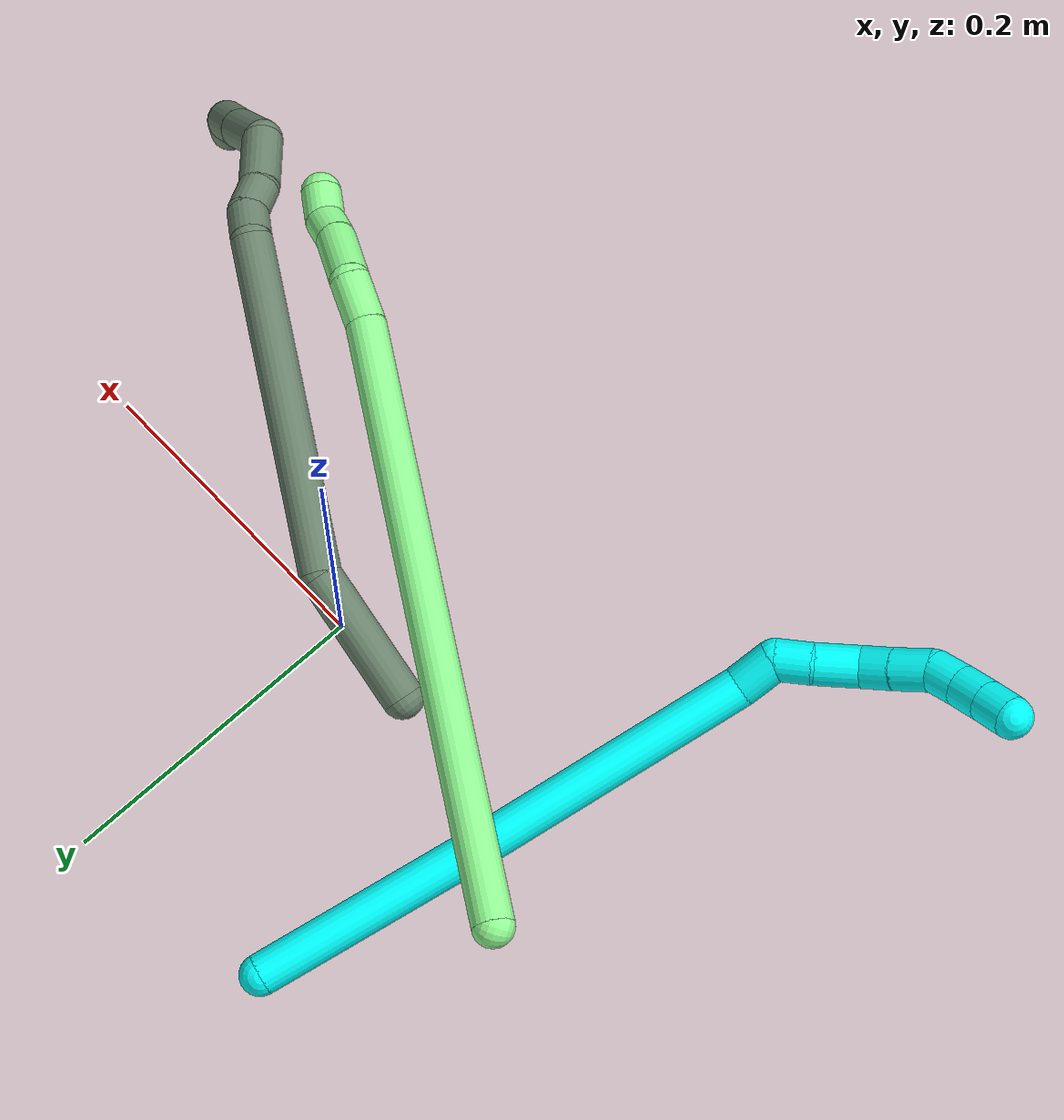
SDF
<sdf version="1.7">
 <world name="default">
  <model name="3">
   <static>0</static>
   <link name="3">
    <collision name="collision-cylinder-e_1_1_4">
     <pose>-0.018605 -0.067465 0.001817 1.54387 -0.268997 -0.261932</pose>
     <geometry><cylinder><radius>0.0125</radius><length>0.140014</length></cylinder></geometry>
     <surface>
      <friction><ode><mu>1.16</mu><mu2>1.16</mu2><slip1>0</slip1><slip2>0</slip2></ode></friction>
      <contact><ode><kp>1e+06</kp><kd>1</kd><max_vel>0</max_vel><min_depth>0.001</min_depth></ode></contact>
     </surface>
    </collision>
    <visual name="visual-cylinder-e_1_1_4">
     <pose>-0.018605 -0.067465 0.001817 1.54387 -0.268997 -0.261932</pose>
     <geometry><cylinder><radius>0.0125</radius><length>0.140014</length></cylinder></geometry>
     <material><ambient>0.003922 1 0.996078 1</ambient></material>
    </visual>
    <collision name="collision-cylinder-e_2_4_5">
     <pose>-0.059263 -0.222153 0.004948 1.55573 -0.247607 -0.243942</pose>
     <geometry><cylinder><radius>0.0125</radius><length>0.179953</length></cylinder></geometry>
     <surface>
      <friction><ode><mu>1.16</mu><mu2>1.16</mu2><slip1>0</slip1><slip2>0</slip2></ode></friction>
      <contact><ode><kp>1e+06</kp><kd>1</kd><max_vel>0</max_vel><min_depth>0.001</min_depth></ode></contact>
     </surface>
    </collision>
    <visual name="visual-cylinder-e_2_4_5">
     <pose>-0.059263 -0.222153 0.004948 1.55573 -0.247607 -0.243942</pose>
     <geometry><cylinder><radius>0.0125</radius><length>0.179953</length></cylinder></geometry>
     <material><ambient>0.003922 1 0.996078 1</ambient></material>
    </visual>
    <collision name="collision-cylinder-e_3_5_6">
     <pose>-0.082548 -0.321729 0.010341 1.25191 -0.094548 -0.068376</pose>
     <geometry><cylinder><radius>0.0125</radius><length>0.026136</length></cylinder></geometry>
     <surface>
      <friction><ode><mu>1.16</mu><mu2>1.16</mu2><slip1>0</slip1><slip2>0</slip2></ode></friction>
      <contact><ode><kp>1e+06</kp><kd>1</kd><max_vel>0</max_vel><min_depth>0.001</min_depth></ode></contact>
     </surface>
    </collision>
    <visual name="visual-cylinder-e_3_5_6">
     <pose>-0.082548 -0.321729 0.010341 1.25191 -0.094548 -0.068376</pose>
     <geometry><cylinder><radius>0.0125</radius><length>0.026136</length></cylinder></geometry>
     <material><ambient>0.003922 1 0.996078 1</ambient></material>
    </visual>
    <collision name="collision-cylinder-e_4_6_7">
     <pose>-0.091994 -0.340596 0.017351 1.14778 -0.854978 -0.572847</pose>
     <geometry><cylinder><radius>0.0125</radius><length>0.021767</length></cylinder></geometry>
     <surface>
      <friction><ode><mu>1.16</mu><mu2>1.16</mu2><slip1>0</slip1><slip2>0</slip2></ode></friction>
      <contact><ode><kp>1e+06</kp><kd>1</kd><max_vel>0</max_vel><min_depth>0.001</min_depth></ode></contact>
     </surface>
    </collision>
    <visual name="visual-cylinder-e_4_6_7">
     <pose>-0.091994 -0.340596 0.017351 1.14778 -0.854978 -0.572847</pose>
     <geometry><cylinder><radius>0.0125</radius><length>0.021767</length></cylinder></geometry>
     <material><ambient>0.003922 1 0.996078 1</ambient></material>
    </visual>
    <collision name="collision-cylinder-e_5_7_8">
     <pose>-0.110755 -0.356289 0.02201 1.38489 -0.845985 -0.714724</pose>
     <geometry><cylinder><radius>0.0125</radius><length>0.028181</length></cylinder></geometry>
     <surface>
      <friction><ode><mu>1.16</mu><mu2>1.16</mu2><slip1>0</slip1><slip2>0</slip2></ode></friction>
      <contact><ode><kp>1e+06</kp><kd>1</kd><max_vel>0</max_vel><min_depth>0.001</min_depth></ode></contact>
     </surface>
    </collision>
    <visual name="visual-cylinder-e_5_7_8">
     <pose>-0.110755 -0.356289 0.02201 1.38489 -0.845985 -0.714724</pose>
     <geometry><cylinder><radius>0.0125</radius><length>0.028181</length></cylinder></geometry>
     <material><ambient>0.003922 1 0.996078 1</ambient></material>
    </visual>
    <collision name="collision-cylinder-e_6_8_9">
     <pose>-0.127481 -0.37099 0.029404 0.772208 -0.662999 -0.278036</pose>
     <geometry><cylinder><radius>0.0125</radius><length>0.020075</length></cylinder></geometry>
     <surface>
      <friction><ode><mu>1.16</mu><mu2>1.16</mu2><slip1>0</slip1><slip2>0</slip2></ode></friction>
      <contact><ode><kp>1e+06</kp><kd>1</kd><max_vel>0</max_vel><min_depth>0.001</min_depth></ode></contact>
     </surface>
    </collision>
    <visual name="visual-cylinder-e_6_8_9">
     <pose>-0.127481 -0.37099 0.029404 0.772208 -0.662999 -0.278036</pose>
     <geometry><cylinder><radius>0.0125</radius><length>0.020075</length></cylinder></geometry>
     <material><ambient>0.003922 1 0.996078 1</ambient></material>
    </visual>
    <collision name="collision-cylinder-e_7_9_10">
     <pose>-0.140933 -0.383498 0.041411 0.834024 -0.656698 -0.299578</pose>
     <geometry><cylinder><radius>0.0125</radius><length>0.023828</length></cylinder></geometry>
     <surface>
      <friction><ode><mu>1.16</mu><mu2>1.16</mu2><slip1>0</slip1><slip2>0</slip2></ode></friction>
      <contact><ode><kp>1e+06</kp><kd>1</kd><max_vel>0</max_vel><min_depth>0.001</min_depth></ode></contact>
     </surface>
    </collision>
    <visual name="visual-cylinder-e_7_9_10">
     <pose>-0.140933 -0.383498 0.041411 0.834024 -0.656698 -0.299578</pose>
     <geometry><cylinder><radius>0.0125</radius><length>0.023828</length></cylinder></geometry>
     <material><ambient>0.003922 1 0.996078 1</ambient></material>
    </visual>
    <collision name="collision-cylinder-e_8_10_11">
     <pose>-0.155505 -0.39201 0.054443 0.223804 -0.816131 -0.097088</pose>
     <geometry><cylinder><radius>0.0125</radius><length>0.020037</length></cylinder></geometry>
     <surface>
      <friction><ode><mu>1.16</mu><mu2>1.16</mu2><slip1>0</slip1><slip2>0</slip2></ode></friction>
      <contact><ode><kp>1e+06</kp><kd>1</kd><max_vel>0</max_vel><min_depth>0.001</min_depth></ode></contact>
     </surface>
    </collision>
    <visual name="visual-cylinder-e_8_10_11">
     <pose>-0.155505 -0.39201 0.054443 0.223804 -0.816131 -0.097088</pose>
     <geometry><cylinder><radius>0.0125</radius><length>0.020037</length></cylinder></geometry>
     <material><ambient>0.003922 1 0.996078 1</ambient></material>
    </visual>
    <collision name="collision-cylinder-e_9_11_12">
     <pose>-0.169366 -0.394485 0.068624 0.12644 -0.715613 -0.04733</pose>
     <geometry><cylinder><radius>0.0125</radius><length>0.020006</length></cylinder></geometry>
     <surface>
      <friction><ode><mu>1.16</mu><mu2>1.16</mu2><slip1>0</slip1><slip2>0</slip2></ode></friction>
      <contact><ode><kp>1e+06</kp><kd>1</kd><max_vel>0</max_vel><min_depth>0.001</min_depth></ode></contact>
     </surface>
    </collision>
    <visual name="visual-cylinder-e_9_11_12">
     <pose>-0.169366 -0.394485 0.068624 0.12644 -0.715613 -0.04733</pose>
     <geometry><cylinder><radius>0.0125</radius><length>0.020006</length></cylinder></geometry>
     <material><ambient>0.003922 1 0.996078 1</ambient></material>
    </visual>
    <collision name="collision-cylinder-e_10_12_2">
     <pose>-0.182437 -0.396197 0.083669 0.100186 -0.708582 -0.037086</pose>
     <geometry><cylinder><radius>0.0125</radius><length>0.020003</length></cylinder></geometry>
     <surface>
      <friction><ode><mu>1.16</mu><mu2>1.16</mu2><slip1>0</slip1><slip2>0</slip2></ode></friction>
      <contact><ode><kp>1e+06</kp><kd>1</kd><max_vel>0</max_vel><min_depth>0.001</min_depth></ode></contact>
     </surface>
    </collision>
    <visual name="visual-cylinder-e_10_12_2">
     <pose>-0.182437 -0.396197 0.083669 0.100186 -0.708582 -0.037086</pose>
     <geometry><cylinder><radius>0.0125</radius><length>0.020003</length></cylinder></geometry>
     <material><ambient>0.003922 1 0.996078 1</ambient></material>
    </visual>
    <collision name="collision-sphere-2">
     <pose>-0.188945 -0.396956 0.091225 0 -0 0</pose>
     <geometry><sphere><radius>0.0125</radius></sphere></geometry>
     <surface>
      <friction><ode><mu>1.16</mu><mu2>1.16</mu2><slip1>0</slip1><slip2>0</slip2></ode></friction>
      <contact><ode><kp>1e+06</kp><kd>1</kd><max_vel>0</max_vel><min_depth>0.001</min_depth></ode></contact>
     </surface>
    </collision>
    <visual name="visual-sphere-2">
     <pose>-0.188945 -0.396956 0.091225 0 -0 0</pose>
     <geometry><sphere><radius>0.0125</radius></sphere></geometry>
     <material><ambient>0.003922 1 0.996078 1</ambient></material>
    </visual>
    <collision name="collision-sphere-12">
     <pose>-0.175928 -0.395437 0.076113 0 -0 0</pose>
     <geometry><sphere><radius>0.0125</radius></sphere></geometry>
     <surface>
      <friction><ode><mu>1.16</mu><mu2>1.16</mu2><slip1>0</slip1><slip2>0</slip2></ode></friction>
      <contact><ode><kp>1e+06</kp><kd>1</kd><max_vel>0</max_vel><min_depth>0.001</min_depth></ode></contact>
     </surface>
    </collision>
    <visual name="visual-sphere-12">
     <pose>-0.175928 -0.395437 0.076113 0 -0 0</pose>
     <geometry><sphere><radius>0.0125</radius></sphere></geometry>
     <material><ambient>0.003922 1 0.996078 1</ambient></material>
    </visual>
    <collision name="collision-sphere-11">
     <pose>-0.162803 -0.393533 0.061135 0 -0 0</pose>
     <geometry><sphere><radius>0.0125</radius></sphere></geometry>
     <surface>
      <friction><ode><mu>1.16</mu><mu2>1.16</mu2><slip1>0</slip1><slip2>0</slip2></ode></friction>
      <contact><ode><kp>1e+06</kp><kd>1</kd><max_vel>0</max_vel><min_depth>0.001</min_depth></ode></contact>
     </surface>
    </collision>
    <visual name="visual-sphere-11">
     <pose>-0.162803 -0.393533 0.061135 0 -0 0</pose>
     <geometry><sphere><radius>0.0125</radius></sphere></geometry>
     <material><ambient>0.003922 1 0.996078 1</ambient></material>
    </visual>
    <collision name="collision-sphere-10">
     <pose>-0.148206 -0.390487 0.047751 0 -0 0</pose>
     <geometry><sphere><radius>0.0125</radius></sphere></geometry>
     <surface>
      <friction><ode><mu>1.16</mu><mu2>1.16</mu2><slip1>0</slip1><slip2>0</slip2></ode></friction>
      <contact><ode><kp>1e+06</kp><kd>1</kd><max_vel>0</max_vel><min_depth>0.001</min_depth></ode></contact>
     </surface>
    </collision>
    <visual name="visual-sphere-10">
     <pose>-0.148206 -0.390487 0.047751 0 -0 0</pose>
     <geometry><sphere><radius>0.0125</radius></sphere></geometry>
     <material><ambient>0.003922 1 0.996078 1</ambient></material>
    </visual>
    <collision name="collision-sphere-9">
     <pose>-0.133659 -0.376509 0.035071 0 -0 0</pose>
     <geometry><sphere><radius>0.0125</radius></sphere></geometry>
     <surface>
      <friction><ode><mu>1.16</mu><mu2>1.16</mu2><slip1>0</slip1><slip2>0</slip2></ode></friction>
      <contact><ode><kp>1e+06</kp><kd>1</kd><max_vel>0</max_vel><min_depth>0.001</min_depth></ode></contact>
     </surface>
    </collision>
    <visual name="visual-sphere-9">
     <pose>-0.133659 -0.376509 0.035071 0 -0 0</pose>
     <geometry><sphere><radius>0.0125</radius></sphere></geometry>
     <material><ambient>0.003922 1 0.996078 1</ambient></material>
    </visual>
    <collision name="collision-sphere-4">
     <pose>-0.037211 -0.13493 0.003634 0 -0 0</pose>
     <geometry><sphere><radius>0.0125</radius></sphere></geometry>
     <surface>
      <friction><ode><mu>1.16</mu><mu2>1.16</mu2><slip1>0</slip1><slip2>0</slip2></ode></friction>
      <contact><ode><kp>1e+06</kp><kd>1</kd><max_vel>0</max_vel><min_depth>0.001</min_depth></ode></contact>
     </surface>
    </collision>
    <visual name="visual-sphere-4">
     <pose>-0.037211 -0.13493 0.003634 0 -0 0</pose>
     <geometry><sphere><radius>0.0125</radius></sphere></geometry>
     <material><ambient>0.003922 1 0.996078 1</ambient></material>
    </visual>
    <collision name="collision-sphere-1">
     <geometry><sphere><radius>0.0125</radius></sphere></geometry>
     <surface>
      <friction><ode><mu>1.16</mu><mu2>1.16</mu2><slip1>0</slip1><slip2>0</slip2></ode></friction>
      <contact><ode><kp>1e+06</kp><kd>1</kd><max_vel>0</max_vel><min_depth>0.001</min_depth></ode></contact>
     </surface>
    </collision>
    <visual name="visual-sphere-1">
     <geometry><sphere><radius>0.0125</radius></sphere></geometry>
     <material><ambient>0.003922 1 0.996078 1</ambient></material>
    </visual>
    <collision name="collision-sphere-8">
     <pose>-0.121303 -0.36547 0.023737 0 -0 0</pose>
     <geometry><sphere><radius>0.0125</radius></sphere></geometry>
     <surface>
      <friction><ode><mu>1.16</mu><mu2>1.16</mu2><slip1>0</slip1><slip2>0</slip2></ode></friction>
      <contact><ode><kp>1e+06</kp><kd>1</kd><max_vel>0</max_vel><min_depth>0.001</min_depth></ode></contact>
     </surface>
    </collision>
    <visual name="visual-sphere-8">
     <pose>-0.121303 -0.36547 0.023737 0 -0 0</pose>
     <geometry><sphere><radius>0.0125</radius></sphere></geometry>
     <material><ambient>0.003922 1 0.996078 1</ambient></material>
    </visual>
    <collision name="collision-sphere-5">
     <pose>-0.081315 -0.309375 0.006262 0 -0 0</pose>
     <geometry><sphere><radius>0.0125</radius></sphere></geometry>
     <surface>
      <friction><ode><mu>1.16</mu><mu2>1.16</mu2><slip1>0</slip1><slip2>0</slip2></ode></friction>
      <contact><ode><kp>1e+06</kp><kd>1</kd><max_vel>0</max_vel><min_depth>0.001</min_depth></ode></contact>
     </surface>
    </collision>
    <visual name="visual-sphere-5">
     <pose>-0.081315 -0.309375 0.006262 0 -0 0</pose>
     <geometry><sphere><radius>0.0125</radius></sphere></geometry>
     <material><ambient>0.003922 1 0.996078 1</ambient></material>
    </visual>
    <collision name="collision-sphere-6">
     <pose>-0.083782 -0.334083 0.01442 0 -0 0</pose>
     <geometry><sphere><radius>0.0125</radius></sphere></geometry>
     <surface>
      <friction><ode><mu>1.16</mu><mu2>1.16</mu2><slip1>0</slip1><slip2>0</slip2></ode></friction>
      <contact><ode><kp>1e+06</kp><kd>1</kd><max_vel>0</max_vel><min_depth>0.001</min_depth></ode></contact>
     </surface>
    </collision>
    <visual name="visual-sphere-6">
     <pose>-0.083782 -0.334083 0.01442 0 -0 0</pose>
     <geometry><sphere><radius>0.0125</radius></sphere></geometry>
     <material><ambient>0.003922 1 0.996078 1</ambient></material>
    </visual>
    <collision name="collision-sphere-7">
     <pose>-0.100206 -0.347108 0.020283 0 -0 0</pose>
     <geometry><sphere><radius>0.0125</radius></sphere></geometry>
     <surface>
      <friction><ode><mu>1.16</mu><mu2>1.16</mu2><slip1>0</slip1><slip2>0</slip2></ode></friction>
      <contact><ode><kp>1e+06</kp><kd>1</kd><max_vel>0</max_vel><min_depth>0.001</min_depth></ode></contact>
     </surface>
    </collision>
    <visual name="visual-sphere-7">
     <pose>-0.100206 -0.347108 0.020283 0 -0 0</pose>
     <geometry><sphere><radius>0.0125</radius></sphere></geometry>
     <material><ambient>0.003922 1 0.996078 1</ambient></material>
    </visual>
    <inertial>
     <pose>-0.073243 -0.231087 0.016255 0 -0 0</pose>
     <mass>0.5</mass>
     <inertia>
      <ixx>0.000501</ixx>
      <ixy>0</ixy>
      <ixz>0</ixz>
      <iyy>-0.000138</iyy>
      <iyz>0</iyz>
      <izz>0.00091</izz>
     </inertia>
    </inertial>
   </link>
   <pose>-0.132756 0.178209 0.011812 -0.239427 -0.360176 0.111342</pose>
  </model>
  <model name="13">
   <static>0</static>
   <link name="13">
    <collision name="collision-cylinder-e_1_1_4">
     <pose>0.152491 -0.082311 0.08204 0.787048 0.919592 0.40554</pose>
     <geometry><cylinder><radius>0.0125</radius><length>0.383454</length></cylinder></geometry>
     <surface>
      <friction><ode><mu>1.16</mu><mu2>1.16</mu2><slip1>0</slip1><slip2>0</slip2></ode></friction>
      <contact><ode><kp>1e+06</kp><kd>1</kd><max_vel>0</max_vel><min_depth>0.001</min_depth></ode></contact>
     </surface>
    </collision>
    <visual name="visual-cylinder-e_1_1_4">
     <pose>0.152491 -0.082311 0.08204 0.787048 0.919592 0.40554</pose>
     <geometry><cylinder><radius>0.0125</radius><length>0.383454</length></cylinder></geometry>
     <material><ambient>0.564706 0.984314 0.572549 1</ambient></material>
    </visual>
    <collision name="collision-cylinder-e_2_4_5">
     <pose>0.316075 -0.171315 0.172767 0.656441 0.79117 0.282522</pose>
     <geometry><cylinder><radius>0.0125</radius><length>0.031198</length></cylinder></geometry>
     <surface>
      <friction><ode><mu>1.16</mu><mu2>1.16</mu2><slip1>0</slip1><slip2>0</slip2></ode></friction>
      <contact><ode><kp>1e+06</kp><kd>1</kd><max_vel>0</max_vel><min_depth>0.001</min_depth></ode></contact>
     </surface>
    </collision>
    <visual name="visual-cylinder-e_2_4_5">
     <pose>0.316075 -0.171315 0.172767 0.656441 0.79117 0.282522</pose>
     <geometry><cylinder><radius>0.0125</radius><length>0.031198</length></cylinder></geometry>
     <material><ambient>0.564706 0.984314 0.572549 1</ambient></material>
    </visual>
    <collision name="collision-cylinder-e_3_5_6">
     <pose>0.347366 -0.179011 0.188634 0.138776 1.2262 0.097714</pose>
     <geometry><cylinder><radius>0.0125</radius><length>0.042918</length></cylinder></geometry>
     <surface>
      <friction><ode><mu>1.16</mu><mu2>1.16</mu2><slip1>0</slip1><slip2>0</slip2></ode></friction>
      <contact><ode><kp>1e+06</kp><kd>1</kd><max_vel>0</max_vel><min_depth>0.001</min_depth></ode></contact>
     </surface>
    </collision>
    <visual name="visual-cylinder-e_3_5_6">
     <pose>0.347366 -0.179011 0.188634 0.138776 1.2262 0.097714</pose>
     <geometry><cylinder><radius>0.0125</radius><length>0.042918</length></cylinder></geometry>
     <material><ambient>0.564706 0.984314 0.572549 1</ambient></material>
    </visual>
    <collision name="collision-cylinder-e_4_6_7">
     <pose>0.376991 -0.179812 0.200486 -0.043067 1.11032 -0.026714</pose>
     <geometry><cylinder><radius>0.0125</radius><length>0.021049</length></cylinder></geometry>
     <surface>
      <friction><ode><mu>1.16</mu><mu2>1.16</mu2><slip1>0</slip1><slip2>0</slip2></ode></friction>
      <contact><ode><kp>1e+06</kp><kd>1</kd><max_vel>0</max_vel><min_depth>0.001</min_depth></ode></contact>
     </surface>
    </collision>
    <visual name="visual-cylinder-e_4_6_7">
     <pose>0.376991 -0.179812 0.200486 -0.043067 1.11032 -0.026714</pose>
     <geometry><cylinder><radius>0.0125</radius><length>0.021049</length></cylinder></geometry>
     <material><ambient>0.564706 0.984314 0.572549 1</ambient></material>
    </visual>
    <collision name="collision-cylinder-e_5_7_2">
     <pose>0.395339 -0.184002 0.209092 0.840282 0.986767 0.471528</pose>
     <geometry><cylinder><radius>0.0125</radius><length>0.021382</length></cylinder></geometry>
     <surface>
      <friction><ode><mu>1.16</mu><mu2>1.16</mu2><slip1>0</slip1><slip2>0</slip2></ode></friction>
      <contact><ode><kp>1e+06</kp><kd>1</kd><max_vel>0</max_vel><min_depth>0.001</min_depth></ode></contact>
     </surface>
    </collision>
    <visual name="visual-cylinder-e_5_7_2">
     <pose>0.395339 -0.184002 0.209092 0.840282 0.986767 0.471528</pose>
     <geometry><cylinder><radius>0.0125</radius><length>0.021382</length></cylinder></geometry>
     <material><ambient>0.564706 0.984314 0.572549 1</ambient></material>
    </visual>
    <collision name="collision-sphere-2">
     <pose>0.404258 -0.188392 0.213025 0 -0 0</pose>
     <geometry><sphere><radius>0.0125</radius></sphere></geometry>
     <surface>
      <friction><ode><mu>1.16</mu><mu2>1.16</mu2><slip1>0</slip1><slip2>0</slip2></ode></friction>
      <contact><ode><kp>1e+06</kp><kd>1</kd><max_vel>0</max_vel><min_depth>0.001</min_depth></ode></contact>
     </surface>
    </collision>
    <visual name="visual-sphere-2">
     <pose>0.404258 -0.188392 0.213025 0 -0 0</pose>
     <geometry><sphere><radius>0.0125</radius></sphere></geometry>
     <material><ambient>0.564706 0.984314 0.572549 1</ambient></material>
    </visual>
    <collision name="collision-sphere-7">
     <pose>0.38642 -0.179611 0.205158 0 -0 0</pose>
     <geometry><sphere><radius>0.0125</radius></sphere></geometry>
     <surface>
      <friction><ode><mu>1.16</mu><mu2>1.16</mu2><slip1>0</slip1><slip2>0</slip2></ode></friction>
      <contact><ode><kp>1e+06</kp><kd>1</kd><max_vel>0</max_vel><min_depth>0.001</min_depth></ode></contact>
     </surface>
    </collision>
    <visual name="visual-sphere-7">
     <pose>0.38642 -0.179611 0.205158 0 -0 0</pose>
     <geometry><sphere><radius>0.0125</radius></sphere></geometry>
     <material><ambient>0.564706 0.984314 0.572549 1</ambient></material>
    </visual>
    <collision name="collision-sphere-6">
     <pose>0.367563 -0.180014 0.195813 0 -0 0</pose>
     <geometry><sphere><radius>0.0125</radius></sphere></geometry>
     <surface>
      <friction><ode><mu>1.16</mu><mu2>1.16</mu2><slip1>0</slip1><slip2>0</slip2></ode></friction>
      <contact><ode><kp>1e+06</kp><kd>1</kd><max_vel>0</max_vel><min_depth>0.001</min_depth></ode></contact>
     </surface>
    </collision>
    <visual name="visual-sphere-6">
     <pose>0.367563 -0.180014 0.195813 0 -0 0</pose>
     <geometry><sphere><radius>0.0125</radius></sphere></geometry>
     <material><ambient>0.564706 0.984314 0.572549 1</ambient></material>
    </visual>
    <collision name="collision-sphere-5">
     <pose>0.327169 -0.178008 0.181454 0 -0 0</pose>
     <geometry><sphere><radius>0.0125</radius></sphere></geometry>
     <surface>
      <friction><ode><mu>1.16</mu><mu2>1.16</mu2><slip1>0</slip1><slip2>0</slip2></ode></friction>
      <contact><ode><kp>1e+06</kp><kd>1</kd><max_vel>0</max_vel><min_depth>0.001</min_depth></ode></contact>
     </surface>
    </collision>
    <visual name="visual-sphere-5">
     <pose>0.327169 -0.178008 0.181454 0 -0 0</pose>
     <geometry><sphere><radius>0.0125</radius></sphere></geometry>
     <material><ambient>0.564706 0.984314 0.572549 1</ambient></material>
    </visual>
    <collision name="collision-sphere-1">
     <geometry><sphere><radius>0.0125</radius></sphere></geometry>
     <surface>
      <friction><ode><mu>1.16</mu><mu2>1.16</mu2><slip1>0</slip1><slip2>0</slip2></ode></friction>
      <contact><ode><kp>1e+06</kp><kd>1</kd><max_vel>0</max_vel><min_depth>0.001</min_depth></ode></contact>
     </surface>
    </collision>
    <visual name="visual-sphere-1">
     <geometry><sphere><radius>0.0125</radius></sphere></geometry>
     <material><ambient>0.564706 0.984314 0.572549 1</ambient></material>
    </visual>
    <collision name="collision-sphere-4">
     <pose>0.304982 -0.164623 0.16408 0 -0 0</pose>
     <geometry><sphere><radius>0.0125</radius></sphere></geometry>
     <surface>
      <friction><ode><mu>1.16</mu><mu2>1.16</mu2><slip1>0</slip1><slip2>0</slip2></ode></friction>
      <contact><ode><kp>1e+06</kp><kd>1</kd><max_vel>0</max_vel><min_depth>0.001</min_depth></ode></contact>
     </surface>
    </collision>
    <visual name="visual-sphere-4">
     <pose>0.304982 -0.164623 0.16408 0 -0 0</pose>
     <geometry><sphere><radius>0.0125</radius></sphere></geometry>
     <material><ambient>0.564706 0.984314 0.572549 1</ambient></material>
    </visual>
    <inertial>
     <pose>0.199261 -0.104618 0.10727 0 -0 0</pose>
     <mass>0.5</mass>
     <inertia>
      <ixx>0.003792</ixx>
      <ixy>0</ixy>
      <ixz>0</ixz>
      <iyy>0.005233</iyy>
      <iyz>0</iyz>
      <izz>-0.001719</izz>
     </inertia>
    </inertial>
   </link>
   <pose>-0.216742 0.074441 0.078234 -1.28082 0.603685 -0.833374</pose>
  </model>
  <model name="17">
   <static>0</static>
   <link name="17">
    <collision name="collision-cylinder-e_1_1_4">
     <pose>0.003578 8.8e-05 0.041941 -0.002099 0.085112 -8.9e-05</pose>
     <geometry><cylinder><radius>0.0125</radius><length>0.084186</length></cylinder></geometry>
     <surface>
      <friction><ode><mu>1.16</mu><mu2>1.16</mu2><slip1>0</slip1><slip2>0</slip2></ode></friction>
      <contact><ode><kp>1e+06</kp><kd>1</kd><max_vel>0</max_vel><min_depth>0.001</min_depth></ode></contact>
     </surface>
    </collision>
    <visual name="visual-cylinder-e_1_1_4">
     <pose>0.003578 8.8e-05 0.041941 -0.002099 0.085112 -8.9e-05</pose>
     <geometry><cylinder><radius>0.0125</radius><length>0.084186</length></cylinder></geometry>
     <material><ambient>0.415686 0.509804 0.423529 1</ambient></material>
    </visual>
    <collision name="collision-cylinder-e_2_4_5">
     <pose>0.046114 -0.031108 0.175581 0.328775 0.382295 0.064179</pose>
     <geometry><cylinder><radius>0.0125</radius><length>0.208856</length></cylinder></geometry>
     <surface>
      <friction><ode><mu>1.16</mu><mu2>1.16</mu2><slip1>0</slip1><slip2>0</slip2></ode></friction>
      <contact><ode><kp>1e+06</kp><kd>1</kd><max_vel>0</max_vel><min_depth>0.001</min_depth></ode></contact>
     </surface>
    </collision>
    <visual name="visual-cylinder-e_2_4_5">
     <pose>0.046114 -0.031108 0.175581 0.328775 0.382295 0.064179</pose>
     <geometry><cylinder><radius>0.0125</radius><length>0.208856</length></cylinder></geometry>
     <material><ambient>0.415686 0.509804 0.423529 1</ambient></material>
    </visual>
    <collision name="collision-cylinder-e_3_5_6">
     <pose>0.092543 -0.06441 0.27461 0.26875 0.77687 0.110534</pose>
     <geometry><cylinder><radius>0.0125</radius><length>0.021318</length></cylinder></geometry>
     <surface>
      <friction><ode><mu>1.16</mu><mu2>1.16</mu2><slip1>0</slip1><slip2>0</slip2></ode></friction>
      <contact><ode><kp>1e+06</kp><kd>1</kd><max_vel>0</max_vel><min_depth>0.001</min_depth></ode></contact>
     </surface>
    </collision>
    <visual name="visual-cylinder-e_3_5_6">
     <pose>0.092543 -0.06441 0.27461 0.26875 0.77687 0.110534</pose>
     <geometry><cylinder><radius>0.0125</radius><length>0.021318</length></cylinder></geometry>
     <material><ambient>0.415686 0.509804 0.423529 1</ambient></material>
    </visual>
    <collision name="collision-cylinder-e_4_6_7">
     <pose>0.107589 -0.071939 0.286445 0.885221 0.816321 0.404336</pose>
     <geometry><cylinder><radius>0.0125</radius><length>0.020789</length></cylinder></geometry>
     <surface>
      <friction><ode><mu>1.16</mu><mu2>1.16</mu2><slip1>0</slip1><slip2>0</slip2></ode></friction>
      <contact><ode><kp>1e+06</kp><kd>1</kd><max_vel>0</max_vel><min_depth>0.001</min_depth></ode></contact>
     </surface>
    </collision>
    <visual name="visual-cylinder-e_4_6_7">
     <pose>0.107589 -0.071939 0.286445 0.885221 0.816321 0.404336</pose>
     <geometry><cylinder><radius>0.0125</radius><length>0.020789</length></cylinder></geometry>
     <material><ambient>0.415686 0.509804 0.423529 1</ambient></material>
    </visual>
    <collision name="collision-cylinder-e_5_7_8">
     <pose>0.129781 -0.08356 0.302949 0.471089 0.826508 0.20971</pose>
     <geometry><cylinder><radius>0.0125</radius><length>0.039747</length></cylinder></geometry>
     <surface>
      <friction><ode><mu>1.16</mu><mu2>1.16</mu2><slip1>0</slip1><slip2>0</slip2></ode></friction>
      <contact><ode><kp>1e+06</kp><kd>1</kd><max_vel>0</max_vel><min_depth>0.001</min_depth></ode></contact>
     </surface>
    </collision>
    <visual name="visual-cylinder-e_5_7_8">
     <pose>0.129781 -0.08356 0.302949 0.471089 0.826508 0.20971</pose>
     <geometry><cylinder><radius>0.0125</radius><length>0.039747</length></cylinder></geometry>
     <material><ambient>0.415686 0.509804 0.423529 1</ambient></material>
    </visual>
    <collision name="collision-cylinder-e_6_8_9">
     <pose>0.161593 -0.0824 0.322922 -0.739168 1.01026 -0.422055</pose>
     <geometry><cylinder><radius>0.0125</radius><length>0.040599</length></cylinder></geometry>
     <surface>
      <friction><ode><mu>1.16</mu><mu2>1.16</mu2><slip1>0</slip1><slip2>0</slip2></ode></friction>
      <contact><ode><kp>1e+06</kp><kd>1</kd><max_vel>0</max_vel><min_depth>0.001</min_depth></ode></contact>
     </surface>
    </collision>
    <visual name="visual-cylinder-e_6_8_9">
     <pose>0.161593 -0.0824 0.322922 -0.739168 1.01026 -0.422055</pose>
     <geometry><cylinder><radius>0.0125</radius><length>0.040599</length></cylinder></geometry>
     <material><ambient>0.415686 0.509804 0.423529 1</ambient></material>
    </visual>
    <collision name="collision-cylinder-e_7_9_10">
     <pose>0.191382 -0.070602 0.336386 -0.689818 1.05658 -0.413366</pose>
     <geometry><cylinder><radius>0.0125</radius><length>0.028935</length></cylinder></geometry>
     <surface>
      <friction><ode><mu>1.16</mu><mu2>1.16</mu2><slip1>0</slip1><slip2>0</slip2></ode></friction>
      <contact><ode><kp>1e+06</kp><kd>1</kd><max_vel>0</max_vel><min_depth>0.001</min_depth></ode></contact>
     </surface>
    </collision>
    <visual name="visual-cylinder-e_7_9_10">
     <pose>0.191382 -0.070602 0.336386 -0.689818 1.05658 -0.413366</pose>
     <geometry><cylinder><radius>0.0125</radius><length>0.028935</length></cylinder></geometry>
     <material><ambient>0.415686 0.509804 0.423529 1</ambient></material>
    </visual>
    <collision name="collision-cylinder-e_8_10_11">
     <pose>0.218638 -0.061834 0.340007 -1.98591 1.26469 -1.68711</pose>
     <geometry><cylinder><radius>0.0125</radius><length>0.030748</length></cylinder></geometry>
     <surface>
      <friction><ode><mu>1.16</mu><mu2>1.16</mu2><slip1>0</slip1><slip2>0</slip2></ode></friction>
      <contact><ode><kp>1e+06</kp><kd>1</kd><max_vel>0</max_vel><min_depth>0.001</min_depth></ode></contact>
     </surface>
    </collision>
    <visual name="visual-cylinder-e_8_10_11">
     <pose>0.218638 -0.061834 0.340007 -1.98591 1.26469 -1.68711</pose>
     <geometry><cylinder><radius>0.0125</radius><length>0.030748</length></cylinder></geometry>
     <material><ambient>0.415686 0.509804 0.423529 1</ambient></material>
    </visual>
    <collision name="collision-cylinder-e_9_11_2">
     <pose>0.245126 -0.056242 0.341643 -0.368102 1.2633 -0.270736</pose>
     <geometry><cylinder><radius>0.0125</radius><length>0.024822</length></cylinder></geometry>
     <surface>
      <friction><ode><mu>1.16</mu><mu2>1.16</mu2><slip1>0</slip1><slip2>0</slip2></ode></friction>
      <contact><ode><kp>1e+06</kp><kd>1</kd><max_vel>0</max_vel><min_depth>0.001</min_depth></ode></contact>
     </surface>
    </collision>
    <visual name="visual-cylinder-e_9_11_2">
     <pose>0.245126 -0.056242 0.341643 -0.368102 1.2633 -0.270736</pose>
     <geometry><cylinder><radius>0.0125</radius><length>0.024822</length></cylinder></geometry>
     <material><ambient>0.415686 0.509804 0.423529 1</ambient></material>
    </visual>
    <collision name="collision-sphere-2">
     <pose>0.256955 -0.054891 0.345148 0 -0 0</pose>
     <geometry><sphere><radius>0.0125</radius></sphere></geometry>
     <surface>
      <friction><ode><mu>1.16</mu><mu2>1.16</mu2><slip1>0</slip1><slip2>0</slip2></ode></friction>
      <contact><ode><kp>1e+06</kp><kd>1</kd><max_vel>0</max_vel><min_depth>0.001</min_depth></ode></contact>
     </surface>
    </collision>
    <visual name="visual-sphere-2">
     <pose>0.256955 -0.054891 0.345148 0 -0 0</pose>
     <geometry><sphere><radius>0.0125</radius></sphere></geometry>
     <material><ambient>0.415686 0.509804 0.423529 1</ambient></material>
    </visual>
    <collision name="collision-sphere-11">
     <pose>0.233297 -0.057594 0.338138 0 -0 0</pose>
     <geometry><sphere><radius>0.0125</radius></sphere></geometry>
     <surface>
      <friction><ode><mu>1.16</mu><mu2>1.16</mu2><slip1>0</slip1><slip2>0</slip2></ode></friction>
      <contact><ode><kp>1e+06</kp><kd>1</kd><max_vel>0</max_vel><min_depth>0.001</min_depth></ode></contact>
     </surface>
    </collision>
    <visual name="visual-sphere-11">
     <pose>0.233297 -0.057594 0.338138 0 -0 0</pose>
     <geometry><sphere><radius>0.0125</radius></sphere></geometry>
     <material><ambient>0.415686 0.509804 0.423529 1</ambient></material>
    </visual>
    <collision name="collision-sphere-10">
     <pose>0.203979 -0.066073 0.341875 0 -0 0</pose>
     <geometry><sphere><radius>0.0125</radius></sphere></geometry>
     <surface>
      <friction><ode><mu>1.16</mu><mu2>1.16</mu2><slip1>0</slip1><slip2>0</slip2></ode></friction>
      <contact><ode><kp>1e+06</kp><kd>1</kd><max_vel>0</max_vel><min_depth>0.001</min_depth></ode></contact>
     </surface>
    </collision>
    <visual name="visual-sphere-10">
     <pose>0.203979 -0.066073 0.341875 0 -0 0</pose>
     <geometry><sphere><radius>0.0125</radius></sphere></geometry>
     <material><ambient>0.415686 0.509804 0.423529 1</ambient></material>
    </visual>
    <collision name="collision-sphere-9">
     <pose>0.178786 -0.07513 0.330897 0 -0 0</pose>
     <geometry><sphere><radius>0.0125</radius></sphere></geometry>
     <surface>
      <friction><ode><mu>1.16</mu><mu2>1.16</mu2><slip1>0</slip1><slip2>0</slip2></ode></friction>
      <contact><ode><kp>1e+06</kp><kd>1</kd><max_vel>0</max_vel><min_depth>0.001</min_depth></ode></contact>
     </surface>
    </collision>
    <visual name="visual-sphere-9">
     <pose>0.178786 -0.07513 0.330897 0 -0 0</pose>
     <geometry><sphere><radius>0.0125</radius></sphere></geometry>
     <material><ambient>0.415686 0.509804 0.423529 1</ambient></material>
    </visual>
    <collision name="collision-sphere-4">
     <pose>0.007157 0.000176 0.083881 0 -0 0</pose>
     <geometry><sphere><radius>0.0125</radius></sphere></geometry>
     <surface>
      <friction><ode><mu>1.16</mu><mu2>1.16</mu2><slip1>0</slip1><slip2>0</slip2></ode></friction>
      <contact><ode><kp>1e+06</kp><kd>1</kd><max_vel>0</max_vel><min_depth>0.001</min_depth></ode></contact>
     </surface>
    </collision>
    <visual name="visual-sphere-4">
     <pose>0.007157 0.000176 0.083881 0 -0 0</pose>
     <geometry><sphere><radius>0.0125</radius></sphere></geometry>
     <material><ambient>0.415686 0.509804 0.423529 1</ambient></material>
    </visual>
    <collision name="collision-sphere-1">
     <geometry><sphere><radius>0.0125</radius></sphere></geometry>
     <surface>
      <friction><ode><mu>1.16</mu><mu2>1.16</mu2><slip1>0</slip1><slip2>0</slip2></ode></friction>
      <contact><ode><kp>1e+06</kp><kd>1</kd><max_vel>0</max_vel><min_depth>0.001</min_depth></ode></contact>
     </surface>
    </collision>
    <visual name="visual-sphere-1">
     <geometry><sphere><radius>0.0125</radius></sphere></geometry>
     <material><ambient>0.415686 0.509804 0.423529 1</ambient></material>
    </visual>
    <collision name="collision-sphere-8">
     <pose>0.1444 -0.089671 0.314946 0 -0 0</pose>
     <geometry><sphere><radius>0.0125</radius></sphere></geometry>
     <surface>
      <friction><ode><mu>1.16</mu><mu2>1.16</mu2><slip1>0</slip1><slip2>0</slip2></ode></friction>
      <contact><ode><kp>1e+06</kp><kd>1</kd><max_vel>0</max_vel><min_depth>0.001</min_depth></ode></contact>
     </surface>
    </collision>
    <visual name="visual-sphere-8">
     <pose>0.1444 -0.089671 0.314946 0 -0 0</pose>
     <geometry><sphere><radius>0.0125</radius></sphere></geometry>
     <material><ambient>0.415686 0.509804 0.423529 1</ambient></material>
    </visual>
    <collision name="collision-sphere-5">
     <pose>0.085071 -0.062392 0.267281 0 -0 0</pose>
     <geometry><sphere><radius>0.0125</radius></sphere></geometry>
     <surface>
      <friction><ode><mu>1.16</mu><mu2>1.16</mu2><slip1>0</slip1><slip2>0</slip2></ode></friction>
      <contact><ode><kp>1e+06</kp><kd>1</kd><max_vel>0</max_vel><min_depth>0.001</min_depth></ode></contact>
     </surface>
    </collision>
    <visual name="visual-sphere-5">
     <pose>0.085071 -0.062392 0.267281 0 -0 0</pose>
     <geometry><sphere><radius>0.0125</radius></sphere></geometry>
     <material><ambient>0.415686 0.509804 0.423529 1</ambient></material>
    </visual>
    <collision name="collision-sphere-6">
     <pose>0.100016 -0.066429 0.281938 0 -0 0</pose>
     <geometry><sphere><radius>0.0125</radius></sphere></geometry>
     <surface>
      <friction><ode><mu>1.16</mu><mu2>1.16</mu2><slip1>0</slip1><slip2>0</slip2></ode></friction>
      <contact><ode><kp>1e+06</kp><kd>1</kd><max_vel>0</max_vel><min_depth>0.001</min_depth></ode></contact>
     </surface>
    </collision>
    <visual name="visual-sphere-6">
     <pose>0.100016 -0.066429 0.281938 0 -0 0</pose>
     <geometry><sphere><radius>0.0125</radius></sphere></geometry>
     <material><ambient>0.415686 0.509804 0.423529 1</ambient></material>
    </visual>
    <collision name="collision-sphere-7">
     <pose>0.115163 -0.07745 0.290952 0 -0 0</pose>
     <geometry><sphere><radius>0.0125</radius></sphere></geometry>
     <surface>
      <friction><ode><mu>1.16</mu><mu2>1.16</mu2><slip1>0</slip1><slip2>0</slip2></ode></friction>
      <contact><ode><kp>1e+06</kp><kd>1</kd><max_vel>0</max_vel><min_depth>0.001</min_depth></ode></contact>
     </surface>
    </collision>
    <visual name="visual-sphere-7">
     <pose>0.115163 -0.07745 0.290952 0 -0 0</pose>
     <geometry><sphere><radius>0.0125</radius></sphere></geometry>
     <material><ambient>0.415686 0.509804 0.423529 1</ambient></material>
    </visual>
    <inertial>
     <pose>0.088411 -0.04273 0.211661 0 -0 0</pose>
     <mass>0.5</mass>
     <inertia>
      <ixx>0.000839</ixx>
      <ixy>0</ixy>
      <ixz>0</ixz>
      <iyy>0.000847</iyy>
      <iyz>0</iyz>
      <izz>-5.7e-05</izz>
     </inertia>
    </inertial>
   </link>
   <pose>-0.079522 0.01878 0.067688 -0.80426 0.971694 -0.976442</pose>
  </model>
 </world>
</sdf>
